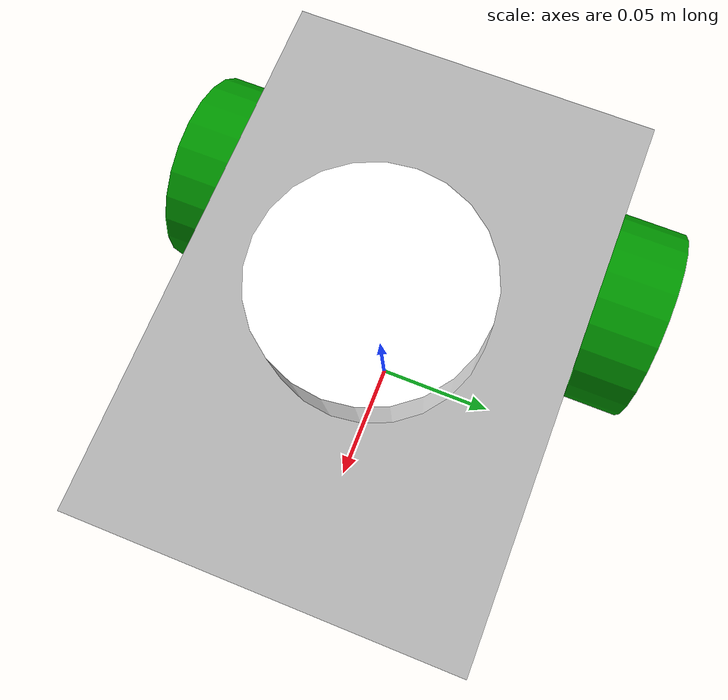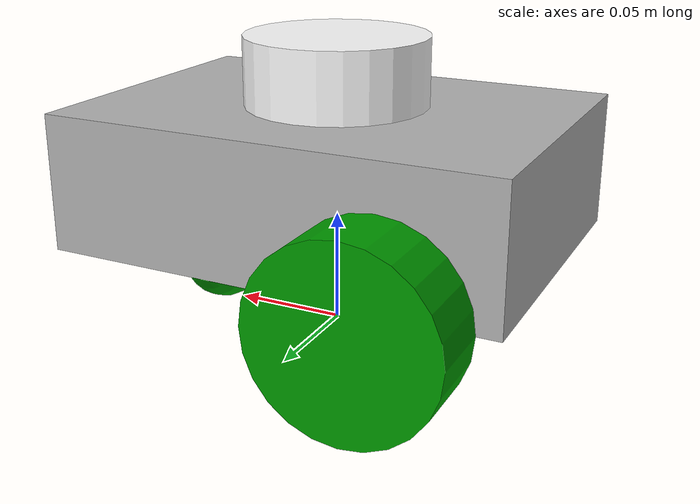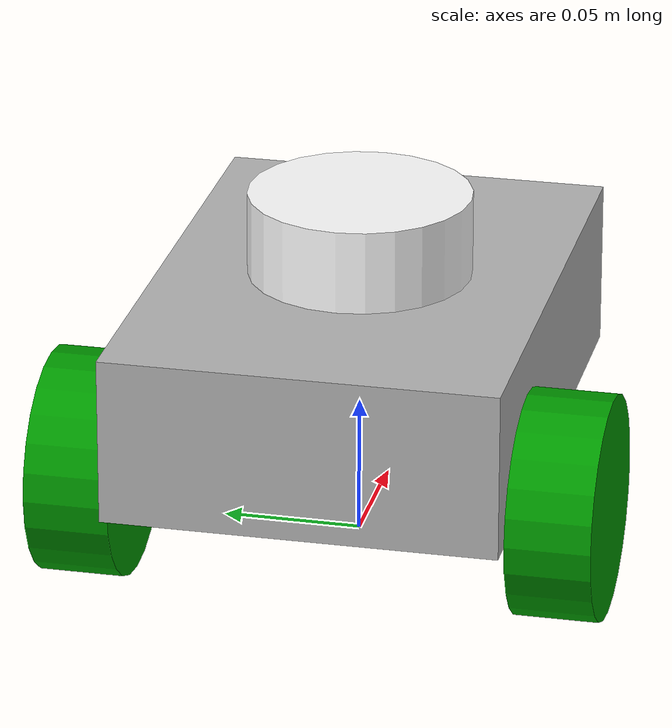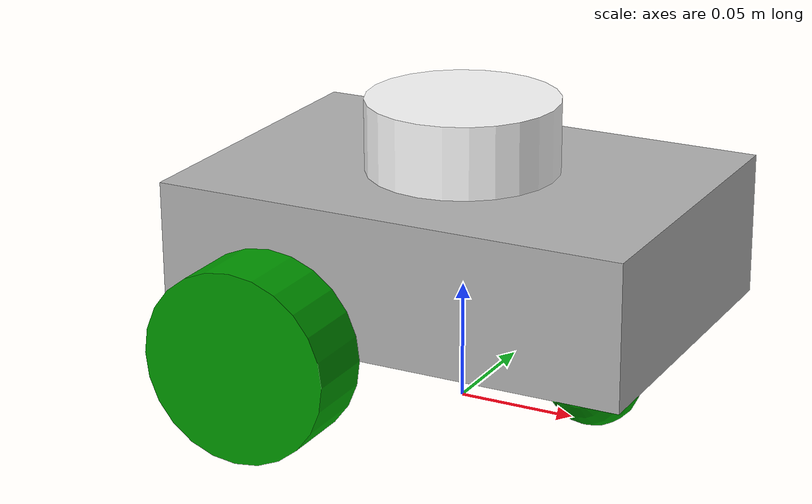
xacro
<?xml version="1.0"?>
<robot xmlns:xacro="http://www.ros.org/wiki/xacro" name="goofy">

  <material name="grey">
    <color rgba="0.7 0.7 0.7 1"/>
  </material>
  <material name="green">
    <color rgba="0 0.6 0 1"/>
  </material>
  <material name="white">
    <color rgba="1 1 1 1"/>
  </material>

  <xacro:property name="wheel_radius" value="0.04"/>
  <xacro:property name="wheel_width" value="0.03"/>

  <xacro:property name="base_length" value="0.20"/>
  <xacro:property name="base_width" value="0.14"/>
  <xacro:property name="base_height" value="0.06"/>
  <xacro:property name="base_z" value="0.03"/>

  <xacro:property name="lidar_radius" value="0.04"/>
  <xacro:property name="lidar_height" value="0.03"/>
  <xacro:property name="lidar_z" value="0.075"/>

  <xacro:property name="wheel_x" value="-0.05"/>
  <xacro:property name="wheel_y" value="0.085"/>

  <xacro:property name="caster_radius" value="0.02"/>
  <xacro:property name="caster_x" value="0.06"/>
  <xacro:property name="caster_z" value="-0.02"/>

  <xacro:property name="base_mass" value="2.0"/>
  <xacro:property name="wheel_mass" value="0.2"/>
  <xacro:property name="lidar_mass" value="0.1"/>
  <!-- Not originally defined - needed a mass value for caster inertia -->
  <xacro:property name="caster_mass" value="0.05"/>

  <xacro:property name="wheel_damping" value="0.1"/>
  <xacro:property name="wheel_friction" value="0.05"/>

  <xacro:macro name="box_inertia" params="mass length width height *origin">
    <inertial>
      <xacro:insert_block name="origin"/>
      <mass value="${mass}"/>
      <inertia
        ixx="${(1/12) * mass * (width*width + height*height)}" ixy="0" ixz="0"
        iyy="${(1/12) * mass * (length*length + height*height)}" iyz="0"
        izz="${(1/12) * mass * (length*length + width*width)}"/>
    </inertial>
  </xacro:macro>

  <xacro:macro name="cylinder_inertia" params="mass radius length *origin">
    <inertial>
      <xacro:insert_block name="origin"/>
      <mass value="${mass}"/>
      <inertia
        ixx="${(1/12) * mass * (3*radius*radius + length*length)}" ixy="0" ixz="0"
        iyy="${(1/12) * mass * (3*radius*radius + length*length)}" iyz="0"
        izz="${0.5 * mass * radius*radius}"/>
    </inertial>
  </xacro:macro>

  <xacro:macro name="sphere_inertia" params="mass radius *origin">
    <inertial>
      <xacro:insert_block name="origin"/>
      <mass value="${mass}"/>
      <inertia
        ixx="${(2/5) * mass * radius*radius}" ixy="0" ixz="0"
        iyy="${(2/5) * mass * radius*radius}" iyz="0"
        izz="${(2/5) * mass * radius*radius}"/>
    </inertial>
  </xacro:macro>
  <xacro:macro name="wheel" params="name color">
    <link name="${name}">
      <visual>
        <geometry>
          <cylinder radius="${wheel_radius}" length="${wheel_width}"/>
        </geometry>
        <origin xyz="0 0 0" rpy="1.5708 0 0"/>
        <material name="${color}"/>
      </visual>
      <collision>
        <geometry>
          <cylinder radius="${wheel_radius}" length="${wheel_width}"/>
        </geometry>
        <origin xyz="0 0 0" rpy="1.5708 0 0"/>
      </collision>
      <xacro:cylinder_inertia mass="${wheel_mass}" radius="${wheel_radius}" length="${wheel_width}">
        <origin xyz="0 0 0" rpy="1.5708 0 0"/>
      </xacro:cylinder_inertia>
    </link>
  </xacro:macro>

  <link name="base_link">
    <visual>
      <geometry>
        <box size="${base_length} ${base_width} ${base_height}"/>
      </geometry>
      <origin xyz="0 0 ${base_z}" rpy="0 0 0"/>
      <material name="grey"/>
    </visual>
    <collision>
      <geometry>
        <box size="${base_length} ${base_width} ${base_height}"/>
      </geometry>
      <origin xyz="0 0 ${base_z}" rpy="0 0 0"/>
    </collision>
    <xacro:box_inertia mass="${base_mass}" length="${base_length}" width="${base_width}" height="${base_height}">
      <origin xyz="0 0 ${base_z}" rpy="0 0 0"/>
    </xacro:box_inertia>
  </link>

  <link name="lidar_link">
    <visual>
      <geometry>
        <cylinder radius="${lidar_radius}" length="${lidar_height}"/>
      </geometry>
      <origin xyz="0 0 0" rpy="0 0 0"/>
      <material name="white"/>
    </visual>
    <collision>
      <geometry>
        <cylinder radius="${lidar_radius}" length="${lidar_height}"/>
      </geometry>
      <origin xyz="0 0 0" rpy="0 0 0"/>
    </collision>
    <xacro:cylinder_inertia mass="${lidar_mass}" radius="${lidar_radius}" length="${lidar_height}">
      <origin xyz="0 0 0" rpy="0 0 0"/>
    </xacro:cylinder_inertia>
  </link>
  <joint name="base_lidar_joint" type="fixed">
    <parent link="base_link"/>
    <child link="lidar_link"/>
    <origin xyz="0 0 ${lidar_z}" rpy="0 0 0"/>
  </joint>
  <xacro:wheel name="left_wheel" color="green"/>
  <xacro:wheel name="right_wheel" color="green"/>

  <joint name="base_left_wheel_joint" type="continuous">
    <parent link="base_link"/>
    <child link="left_wheel"/>
    <origin xyz="${wheel_x} ${wheel_y} 0" rpy="0 0 0"/>
    <axis xyz="0 1 0"/>
    <dynamics damping="${wheel_damping}" friction="${wheel_friction}"/>
  </joint>
  <joint name="base_right_wheel_joint" type="continuous">
    <parent link="base_link"/>
    <child link="right_wheel"/>
    <origin xyz="${wheel_x} -${wheel_y} 0" rpy="0 0 0"/>
    <axis xyz="0 1 0"/>
    <dynamics damping="${wheel_damping}" friction="${wheel_friction}"/>
  </joint>
  <link name="caster_wheel">
    <visual>
      <geometry>
        <sphere radius="${caster_radius}"/>
      </geometry>
      <origin xyz="0 0 0" rpy="1.5708 0 0"/>
      <material name="green"/>
    </visual>
    <collision>
      <geometry>
        <sphere radius="${caster_radius}"/>
      </geometry>
      <origin xyz="0 0 0" rpy="1.5708 0 0"/>
    </collision>
    <xacro:sphere_inertia mass="${caster_mass}" radius="${caster_radius}">
      <origin xyz="0 0 0" rpy="1.5708 0 0"/>
    </xacro:sphere_inertia>
  </link>
  <joint name="base_caster_wheel_joint" type="fixed">
    <parent link="base_link"/>
    <child link="caster_wheel"/>
    <origin xyz="${caster_x} 0 ${caster_z}" rpy="0 0 0"/>
  </joint>

    <link name="base_footprint"/>
  <joint name="base_joint" type="fixed">
    <parent link="base_footprint"/>
    <child link="base_link"/>
    <origin xyz="0 0 ${wheel_radius}" rpy="0 0 0"/>
  </joint>

</robot>
